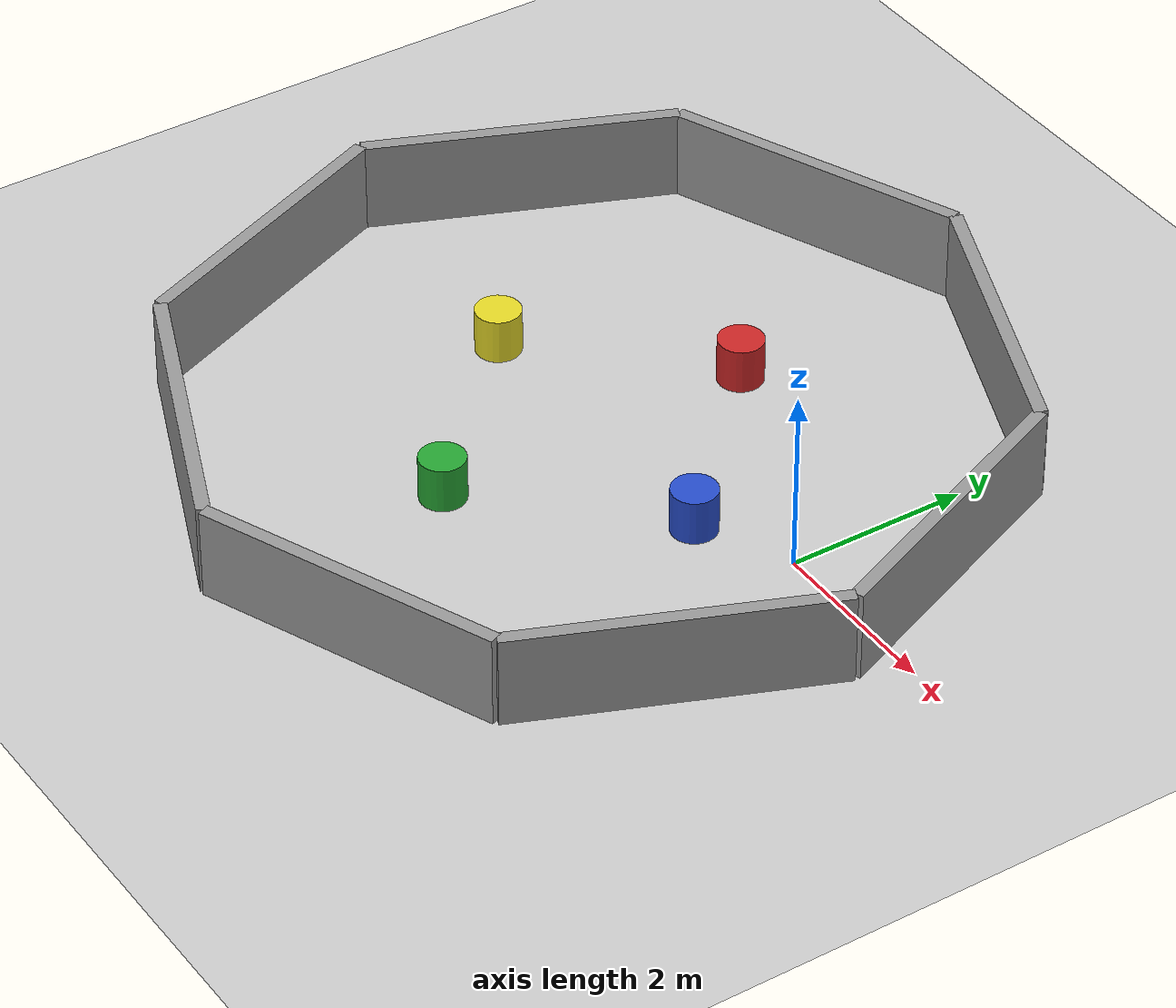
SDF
<?xml version='1.0' ?>
<sdf version='1.7'>
  <world name='octagon'>
    <include><uri>model://sun</uri></include>
    <include><uri>model://ground_plane</uri></include>
    <gravity>0 0 -9.8</gravity>
    <physics type='ode'>
      <max_step_size>0.001</max_step_size>
      <real_time_factor>1</real_time_factor>
      <real_time_update_rate>1000</real_time_update_rate>
    </physics>
    <scene>
      <ambient>0.4 0.4 0.4 1</ambient>
      <background>0.7 0.7 0.7 1</background>
      <shadows>1</shadows>
    </scene>
    <model name='octagon_walls'>
      <static>1</static>
      <link name='wall_0'>
        <pose>1.04099 1.09099 0 0 0 1.96350</pose>
        <collision name='col'>
          <geometry><box><size>3.44415 0.15 1.0</size></box></geometry>
          <pose>0 0 0.5 0 0 0</pose>
        </collision>
        <visual name='vis'>
          <geometry><box><size>3.44415 0.15 1.0</size></box></geometry>
          <pose>0 0 0.5 0 0 0</pose>
          <material><script>
            <uri>file://media/materials/scripts/gazebo.material</uri>
            <name>Gazebo/Grey</name>
          </script></material>
        </visual>
      </link>
      <link name='wall_1'>
        <pose>-1.20901 3.34099 0 0 0 2.74889</pose>
        <collision name='col'>
          <geometry><box><size>3.44415 0.15 1.0</size></box></geometry>
          <pose>0 0 0.5 0 0 0</pose>
        </collision>
        <visual name='vis'>
          <geometry><box><size>3.44415 0.15 1.0</size></box></geometry>
          <pose>0 0 0.5 0 0 0</pose>
          <material><script>
            <uri>file://media/materials/scripts/gazebo.material</uri>
            <name>Gazebo/Grey</name>
          </script></material>
        </visual>
      </link>
      <link name='wall_2'>
        <pose>-4.39099 3.34099 0 0 0 3.53429</pose>
        <collision name='col'>
          <geometry><box><size>3.44415 0.15 1.0</size></box></geometry>
          <pose>0 0 0.5 0 0 0</pose>
        </collision>
        <visual name='vis'>
          <geometry><box><size>3.44415 0.15 1.0</size></box></geometry>
          <pose>0 0 0.5 0 0 0</pose>
          <material><script>
            <uri>file://media/materials/scripts/gazebo.material</uri>
            <name>Gazebo/Grey</name>
          </script></material>
        </visual>
      </link>
      <link name='wall_3'>
        <pose>-6.64099 1.09099 0 0 0 4.31969</pose>
        <collision name='col'>
          <geometry><box><size>3.44415 0.15 1.0</size></box></geometry>
          <pose>0 0 0.5 0 0 0</pose>
        </collision>
        <visual name='vis'>
          <geometry><box><size>3.44415 0.15 1.0</size></box></geometry>
          <pose>0 0 0.5 0 0 0</pose>
          <material><script>
            <uri>file://media/materials/scripts/gazebo.material</uri>
            <name>Gazebo/Grey</name>
          </script></material>
        </visual>
      </link>
      <link name='wall_4'>
        <pose>-6.64099 -2.09099 0 0 0 5.10509</pose>
        <collision name='col'>
          <geometry><box><size>3.44415 0.15 1.0</size></box></geometry>
          <pose>0 0 0.5 0 0 0</pose>
        </collision>
        <visual name='vis'>
          <geometry><box><size>3.44415 0.15 1.0</size></box></geometry>
          <pose>0 0 0.5 0 0 0</pose>
          <material><script>
            <uri>file://media/materials/scripts/gazebo.material</uri>
            <name>Gazebo/Grey</name>
          </script></material>
        </visual>
      </link>
      <link name='wall_5'>
        <pose>-4.39099 -4.34099 0 0 0 5.89049</pose>
        <collision name='col'>
          <geometry><box><size>3.44415 0.15 1.0</size></box></geometry>
          <pose>0 0 0.5 0 0 0</pose>
        </collision>
        <visual name='vis'>
          <geometry><box><size>3.44415 0.15 1.0</size></box></geometry>
          <pose>0 0 0.5 0 0 0</pose>
          <material><script>
            <uri>file://media/materials/scripts/gazebo.material</uri>
            <name>Gazebo/Grey</name>
          </script></material>
        </visual>
      </link>
      <link name='wall_6'>
        <pose>-1.20901 -4.34099 0 0 0 6.67588</pose>
        <collision name='col'>
          <geometry><box><size>3.44415 0.15 1.0</size></box></geometry>
          <pose>0 0 0.5 0 0 0</pose>
        </collision>
        <visual name='vis'>
          <geometry><box><size>3.44415 0.15 1.0</size></box></geometry>
          <pose>0 0 0.5 0 0 0</pose>
          <material><script>
            <uri>file://media/materials/scripts/gazebo.material</uri>
            <name>Gazebo/Grey</name>
          </script></material>
        </visual>
      </link>
      <link name='wall_7'>
        <pose>1.04099 -2.09099 0 0 0 7.46128</pose>
        <collision name='col'>
          <geometry><box><size>3.44415 0.15 1.0</size></box></geometry>
          <pose>0 0 0.5 0 0 0</pose>
        </collision>
        <visual name='vis'>
          <geometry><box><size>3.44415 0.15 1.0</size></box></geometry>
          <pose>0 0 0.5 0 0 0</pose>
          <material><script>
            <uri>file://media/materials/scripts/gazebo.material</uri>
            <name>Gazebo/Grey</name>
          </script></material>
        </visual>
      </link>
    </model>
    <model name='cylinder1'>
      <pose>-2.80000 1.30000 0.25 0 0 0</pose>
      <static>1</static>
      <link name='link'>
        <collision name='col'>
          <geometry><cylinder><radius>0.25</radius><length>0.5</length></cylinder></geometry>
        </collision>
        <visual name='vis'>
          <geometry><cylinder><radius>0.25</radius><length>0.5</length></cylinder></geometry>
          <material><script>
            <uri>file://media/materials/scripts/gazebo.material</uri>
            <name>Gazebo/Red</name>
          </script></material>
        </visual>
      </link>
    </model>
    <model name='cylinder2'>
      <pose>-1.00000 -0.50000 0.25 0 0 0</pose>
      <static>1</static>
      <link name='link'>
        <collision name='col'>
          <geometry><cylinder><radius>0.25</radius><length>0.5</length></cylinder></geometry>
        </collision>
        <visual name='vis'>
          <geometry><cylinder><radius>0.25</radius><length>0.5</length></cylinder></geometry>
          <material><script>
            <uri>file://media/materials/scripts/gazebo.material</uri>
            <name>Gazebo/Blue</name>
          </script></material>
        </visual>
      </link>
    </model>
    <model name='cylinder3'>
      <pose>-2.80000 -2.30000 0.25 0 0 0</pose>
      <static>1</static>
      <link name='link'>
        <collision name='col'>
          <geometry><cylinder><radius>0.25</radius><length>0.5</length></cylinder></geometry>
        </collision>
        <visual name='vis'>
          <geometry><cylinder><radius>0.25</radius><length>0.5</length></cylinder></geometry>
          <material><script>
            <uri>file://media/materials/scripts/gazebo.material</uri>
            <name>Gazebo/Green</name>
          </script></material>
        </visual>
      </link>
    </model>
    <model name='cylinder4'>
      <pose>-4.60000 -0.50000 0.25 0 0 0</pose>
      <static>1</static>
      <link name='link'>
        <collision name='col'>
          <geometry><cylinder><radius>0.25</radius><length>0.5</length></cylinder></geometry>
        </collision>
        <visual name='vis'>
          <geometry><cylinder><radius>0.25</radius><length>0.5</length></cylinder></geometry>
          <material><script>
            <uri>file://media/materials/scripts/gazebo.material</uri>
            <name>Gazebo/Yellow</name>
          </script></material>
        </visual>
      </link>
    </model>
  </world>
</sdf>
